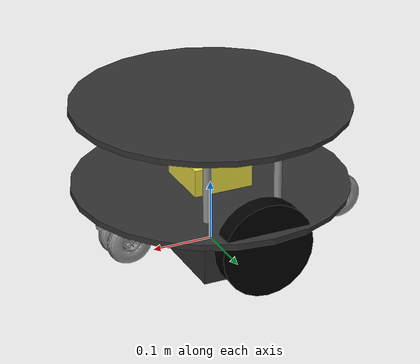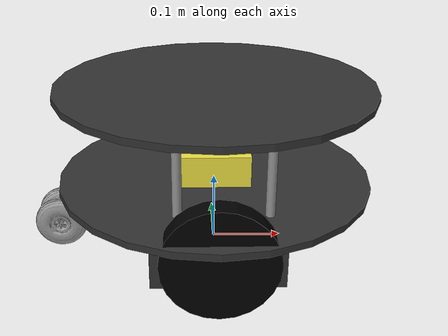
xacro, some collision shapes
<?xml version="1.0"?>
<robot name="arlobot" xmlns:xacro="http://ros.org/wiki/xacro">

  <!-- From $(find turtlebot_description)/urdf/common_properties.urdf.xacro -->
  <!-- It is required by asus_xtion_pro.urdf.xacro -->
  <xacro:property name="M_PI" value="3.1415926535897931"/>

  <!-- This is where the 3D camera location is set. -->
  <xacro:include filename="3d_camera_position.urdf.xacro"/>

  <!-- ArloBot -->
  <xacro:include filename="arlo.urdf.xacro"/>

  <!-- 3D Sensor -->
  <!-- TODO: Why is this still here? Can I safely remove it? -->
  <xacro:include filename="asus_xtion_pro.urdf.xacro"/>

  <xacro:arlobot/>
  <xacro:stack_circles parent="base_link"/>
  <xacro:sensor_asus_xtion_pro parent="base_link"/>
</robot>

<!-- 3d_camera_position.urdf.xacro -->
<!-- This file defines the 3D camera location.-->
<!-- See Readme.MD for hints on calibrating this -->
<robot xmlns:xacro="http://ros.org/wiki/xacro">
  <!-- This is how far forward or backward on the robot the camera is set. -->
  <!-- Test this by setting the robot's axles exactly 1 meter from a wall, start up RVIZ with the robot at 0,0,0 on the grid, -->
  <!-- and see if the wall lines up with the first 1 meter grid line from the robot. -->
  <xacro:property name="cam_px" value="0.125"/>

  <!-- NOTE: cam_py, that is the Y offset, varies for different configurations. This is set in sensors_urdf instead of here -->

  <!-- This is the height of the camera. It isn't as essential as most settings, because we are using a "2D" map. -->
  <!-- However, setting it accurately can help with some use cases. -->
  <xacro:property name="cam_pz" value="0.17"/>

  <!-- This is the tilt across the horizontal when looking straight at the camera. Probably important, but hard to see if it is. -->
  <xacro:property name="cam_or" value="0"/>

  <!-- This is the tilt causing the camera to look "up" or "down". -->
  <xacro:property name="cam_op" value="0"/>

  <!-- This is the rotation of the camera -->
  <!-- Test this by setting the robot's axles exactly 1 meter from a wall, start up RVIZ with the robot at 0,0,0 on the grid, -->
  <!-- and see if the wall lines up straight with the grid line. -->
  <xacro:property name="cam_oy" value="-0.005"/>
</robot>

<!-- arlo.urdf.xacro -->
<robot name="arlobot_hardware" xmlns:xacro="http://ros.org/wiki/xacro">

  <!-- Macro for ArloBot body. -->

  <xacro:property name="base_x" value="0.33"/>
  <xacro:property name="base_y" value="0.33"/>

  <xacro:macro name="arlobot">
    <material name="black">
      <color rgba="0.0 0.0 0.0 1.0"/>
    </material>
    <material name="Green">
      <color rgba="0.0 0.8 0.0 1.0"/>
    </material>
    <material name="veryDarkGrey">
      <color rgba=".2 .2 .2 1"/>
    </material>
    <material name="light_grey">
      <color rgba="0.6 0.6 0.6 1"/>
    </material>

    <!-- base_footprint is a fictitious link(frame) that is on the ground right below base_link origin, navigation stack depends on this frame -->
    <link name="base_footprint">
      <visual>
        <origin xyz="0 0 0" rpy="0 0 0"/>
        <geometry>
          <box size="0.001 0.001 0.001"/>
        </geometry>
        <material name="Green"/>
      </visual>

      <collision>
        <origin xyz="0 0 0.017" rpy="0 0 0"/>
        <geometry>
          <box size="0.001 0.001 0.001"/>
        </geometry>
      </collision>
    </link>

    <link name="base_link">
      <inertial>
        <mass value="2"/>
        <origin xyz="0 0 0.0"/>
        <inertia ixx="0.01" ixy="0.0" ixz="0.0"
                 iyy="0.01" iyz="0.0" izz="0.5"/>
      </inertial>

      <visual>
        <origin xyz="0 0 0" rpy="0 0 0"/>
        <geometry>
          <cylinder length="0.0095" radius="0.2245"/>
        </geometry>
        <material name="veryDarkGrey"/>
      </visual>

      <collision>
        <origin xyz="0 0 0" rpy="0 0 0"/>
        <geometry>
          <cylinder length="0.0095" radius="0.2245"/>
        </geometry>
      </collision>
    </link>

    <link name="battery_box">
      <inertial>
        <mass value="0.001"/>
        <origin xyz="0 0 0"/>
        <inertia ixx="0.0001" ixy="0.0" ixz="0.0"
                 iyy="0.0001" iyz="0.0"
                 izz="0.0001"/>
      </inertial>

      <visual>
        <origin xyz="0 0 0" rpy="0 0 0"/>
        <geometry>
          <box size="0.1778 0.3366 0.0762"/>
        </geometry>
        <material name="veryDarkGrey"/>
      </visual>

      <collision>
        <origin xyz="0 0 0" rpy="0 0 0"/>
        <geometry>
          <box size="0.1778 0.3366 0.0762"/>
        </geometry>
      </collision>
    </link>

    <joint name="battery_box_joint" type="fixed">
      <origin xyz="0 0 -0.04285" rpy="0 0 0"/>
      <parent link="base_link"/>
      <child link="battery_box"/>
    </joint>

    <link name="front_caster">
      <inertial>
        <mass value="0.001"/>
        <origin xyz="0 0 0"/>
        <inertia ixx="0.0001" ixy="0.0" ixz="0.0"
                 iyy="0.0001" iyz="0.0"
                 izz="0.0001"/>
      </inertial>

      <visual>
        <origin xyz="0 0 0" rpy="-1.5707 0 1.5707"/>
        <geometry>
          <mesh filename="package://arlobot_ros/meshes/28971-Caster-Wheel-Kit-v1.0_simplified.stl"/>
        </geometry>
        <material name="light_grey">
          <color rgba="0.6 0.6 0.6 1"/>
        </material>
      </visual>

    </link>

    <joint name="front_caster_joint" type="fixed">
      <origin xyz="0.18745 0 -0.00475" rpy="0 0 0"/>
      <parent link="base_link"/>
      <child link="front_caster"/>
    </joint>

    <link name="rear_caster">
      <inertial>
        <mass value="0.001"/>
        <origin xyz="0 0 0"/>
        <inertia ixx="0.0001" ixy="0.0" ixz="0.0"
                 iyy="0.0001" iyz="0.0"
                 izz="0.0001"/>
      </inertial>

      <visual>
        <origin xyz="0 0 0" rpy="-1.5707 0 1.5707"/>
        <geometry>
          <mesh filename="package://arlobot_ros/meshes/28971-Caster-Wheel-Kit-v1.0_simplified.stl"/>
        </geometry>
        <material name="light_grey">
          <color rgba="0.6 0.6 0.6 1"/>
        </material>
      </visual>

    </link>

    <joint name="rear_caster_joint" type="fixed">
      <origin xyz="-0.18745 0 -0.00475" rpy="0 0 0"/>
      <parent link="base_link"/>
      <child link="rear_caster"/>
    </joint>

    <joint name="base_footprint_joint" type="fixed">
      <origin xyz="0 0 0.10125" rpy="0 0 0"/>
      <parent link="base_footprint"/>
      <child link="base_link"/>
    </joint>

    <link name="left_axle_link">
      <inertial>
        <origin xyz="0 0 0"/>
        <mass value="0.01"/>
        <inertia ixx="0.001" ixy="0.0" ixz="0.0"
                 iyy="0.001" iyz="0.0" izz="0.001"/>
      </inertial>

      <visual>
        <origin xyz="0 0 0" rpy="0 1.5707 1.5707"/>
        <geometry>
          <cylinder radius="0.00635" length="0.00635"/>
        </geometry>
        <material name="light_grey"/>
      </visual>

      <collision>
        <origin xyz="0 0 0" rpy="0 1.5707 1.5707"/>
        <geometry>
          <cylinder radius="0.00635" length="0.00635"/>
        </geometry>
      </collision>
    </link>

    <joint name="left_axle_joint" type="fixed">
      <origin xyz="0 0.171475 0.0178" rpy="0 0 0"/>
      <parent link="battery_box"/>
      <child link="left_axle_link"/>
      <axis xyz="0 1 0"/>
    </joint>

    <link name="right_axle_link">
      <inertial>
        <origin xyz="0 0 0"/>
        <mass value="0.01"/>
        <inertia ixx="0.001" ixy="0.0" ixz="0.0"
                 iyy="0.001" iyz="0.0" izz="0.001"/>
      </inertial>

      <visual>
        <origin xyz="0 0 0" rpy="0 1.5707 1.5707"/>
        <geometry>
          <cylinder radius="0.00635" length="0.00635"/>
        </geometry>
        <material name="light_grey"/>
      </visual>

      <collision>
        <origin xyz="0 0 0" rpy="0 1.5707 1.5707"/>
        <geometry>
          <cylinder radius="0.00635" length="0.00635"/>
        </geometry>
      </collision>
    </link>

    <joint name="right_axle_joint" type="fixed">
      <origin xyz="0 -0.171475 0.0178" rpy="0 0 0"/>
      <parent link="battery_box"/>
      <child link="right_axle_link"/>
      <axis xyz="0 1 0"/>
    </joint>

    <link name="left_wheel_link">
      <inertial>
        <origin xyz="0 0 0"/>
        <mass value="0.01"/>
        <inertia ixx="0.001" ixy="0.0" ixz="0.0"
                 iyy="0.001" iyz="0.0" izz="0.001"/>
      </inertial>

      <visual>
        <origin xyz="0 0 0" rpy="0 1.5707 1.5707"/>
        <geometry>
          <cylinder radius="0.0762" length="0.03175"/>
        </geometry>
        <material name="black"/>
      </visual>

      <collision>
        <origin xyz="0 0 0" rpy="0 1.5707 1.5707"/>
        <geometry>
          <cylinder radius="0.0762" length="0.03175"/>
        </geometry>
      </collision>
    </link>

    <!-- Fixed because we never rotate it anyway, it is just for show -->
    <!-- NOTE This may prevent gazebo from working with this model -->
    <joint name="left_wheel_joint" type="fixed">
      <origin xyz="0 0.01905 0" rpy="0 0 0"/>
      <parent link="left_axle_link"/>
      <child link="left_wheel_link"/>
      <axis xyz="0 1 0"/>
    </joint>

    <link name="right_wheel_link">
      <inertial>
        <origin xyz="0 0 0"/>
        <mass value="0.01"/>
        <inertia ixx="0.001" ixy="0.0" ixz="0.0"
                 iyy="0.001" iyz="0.0" izz="0.001"/>
      </inertial>

      <visual>
        <origin xyz="0 0 0" rpy="0 1.5707 1.5707"/>
        <geometry>
          <cylinder radius="0.0762" length="0.03175"/>
        </geometry>
        <material name="black"/>
      </visual>

      <collision>
        <origin xyz="0 0 0" rpy="0 1.5707 1.5707"/>
        <geometry>
          <cylinder radius="0.0762" length="0.03175"/>
        </geometry>
      </collision>
    </link>

    <!-- Fixed because we never rotate it anyway, it is just for show -->
    <!-- NOTE This may prevent gazebo from working with this model -->
    <joint name="right_wheel_joint" type="fixed">
      <origin xyz="0 -0.01905 0" rpy="0 0 0"/>
      <parent link="right_axle_link"/>
      <child link="right_wheel_link"/>
      <axis xyz="0 1 0"/>
    </joint>

    <!-- This pretends to be in the center in order to aid in calculating degrees from multiple sensors on one fake laser scan -->
    <joint name="ping_array_joint" type="fixed">
      <origin xyz="0 0 0.03695" rpy="0 0 0"/>
      <parent link="base_link"/>
      <child link="ping_sensor_array"/>
    </joint>

    <link name="ping_sensor_array">
      <visual>
        <geometry>
          <box size="0.0174 0.06 0.0644"/>
        </geometry>
      </visual>
      <inertial>
        <mass value="0.001"/>
        <origin xyz="0 0 0"/>
        <inertia ixx="0.0001" ixy="0.0" ixz="0.0"
                 iyy="0.0001" iyz="0.0"
                 izz="0.0001"/>
      </inertial>
    </link>

    <joint name="ir_array_joint" type="fixed">
      <origin xyz="0 0 0.03695" rpy="0 0 0"/>
      <parent link="base_link"/>
      <child link="ir_sensor_array"/>
    </joint>

    <link name="ir_sensor_array">
      <visual>
        <geometry>
          <box size="0.0174 0.06 0.0644"/>
        </geometry>
      </visual>
      <inertial>
        <mass value="0.001"/>
        <origin xyz="0 0 0"/>
        <inertia ixx="0.0001" ixy="0.0" ixz="0.0"
                 iyy="0.0001" iyz="0.0"
                 izz="0.0001"/>
      </inertial>
    </link>

    <!-- XV11 Neato Laser scanner. -->
    <!--    NOTE: This is no longer used on my robot, only on my stationary test rig. -->
    <joint name="neato_laser_joint" type="fixed">
      <origin xyz="0.0 0.0 0.0" rpy="0.0 0 0"/>
      <parent link="base_link"/>
      <child link="neato_laser"/>
    </joint>

    <link name="neato_laser">
      <visual>
        <geometry>
          <box size="0.1 0.1 0.1"/>
        </geometry>
      </visual>
      <inertial>
        <mass value="0.001"/>
        <origin xyz="0 0 0"/>
        <inertia ixx="0.0001" ixy="0.0" ixz="0.0"
                 iyy="0.0001" iyz="0.0"
                 izz="0.0001"/>
      </inertial>
    </link>

    <!-- Scanse Sweep rotary scanner. -->
    <!--    NOTE: This is no longer used on my robot, only on my stationary test rig. -->
    <joint name="scanse_sweep_joint" type="fixed">
      <origin xyz="0.0 0.0 0.0" rpy="0.0 0 0"/>
      <parent link="base_link"/>
      <child link="scanse_sweep"/>
    </joint>

    <link name="scanse_sweep">
      <visual>
        <geometry>
          <box size="0.1 0.1 0.1"/>
        </geometry>
      </visual>
      <inertial>
        <mass value="0.001"/>
        <origin xyz="0 0 0"/>
        <inertia ixx="0.0001" ixy="0.0" ixz="0.0"
                 iyy="0.0001" iyz="0.0"
                 izz="0.0001"/>
      </inertial>
    </link>
  </xacro:macro>

  <xacro:macro name="arlobot_standoff_5in" params="parent number x_loc y_loc z_loc">
    <joint name="standoff_5in_${number}_joint" type="fixed">
      <origin xyz="${x_loc} ${y_loc} ${z_loc}" rpy="0 0 0"/>
      <parent link="${parent}"/>
      <child link="standoff_5in_${number}_link"/>
    </joint>

    <link name="standoff_5in_${number}_link">
      <inertial>
        <mass value="0.001"/>
        <origin xyz="0 0 0"/>
        <inertia ixx="0.0001" ixy="0.0" ixz="0.0"
                 iyy="0.0001" iyz="0.0"
                 izz="0.0001"/>
      </inertial>

      <visual>
        <origin xyz=" 0 0 0 " rpy="0 0 0"/>
        <geometry>
          <cylinder length="0.127" radius="0.00635"/>
        </geometry>
        <material name="light_grey">
          <color rgba="0.6 0.6 0.6 1"/>
        </material>
      </visual>

      <collision>
        <origin xyz="0.0 0.0 0.0" rpy="0 0 0"/>
        <geometry>
          <cylinder length="0.127" radius="0.00635"/>
        </geometry>
      </collision>
    </link>
  </xacro:macro>

  <xacro:macro name="stack_circles" params="parent">
    <joint name="plate_0_joint" type="fixed">
      <origin xyz="0 0 0.1365" rpy="0 0 0"/>
      <parent link="${parent}"/>
      <child link="plate_0_link"/>
    </joint>

    <link name="plate_0_link">
      <inertial>
        <mass value="0.01"/>
        <origin xyz="0 0 0"/>
        <inertia ixx="0.01" ixy="0.0" ixz="0.0"
                 iyy="0.01" iyz="0.0"
                 izz="0.01"/>
      </inertial>

      <visual>
        <origin xyz=" 0 0 0 " rpy="0 0 0"/>
        <geometry>
          <cylinder length="0.0095" radius="0.2245"/>
        </geometry>
        <material name="veryDarkGrey">
          <color rgba=".2 .2 .2 1"/>
        </material>
      </visual>

      <collision>
        <origin xyz="0.0 0.0 0.0" rpy="0 0 0"/>
        <geometry>
          <cylinder length="0.0095" radius="0.2245"/>
        </geometry>
      </collision>
    </link>

    <xacro:arlobot_standoff_5in parent="${parent}" number="0" x_loc="0.0676402" y_loc="0.1314196"
                                z_loc="0.06825"/>
    <xacro:arlobot_standoff_5in parent="${parent}" number="1" x_loc="0.0676402" y_loc="-0.1314196"
                                z_loc="0.06825"/>
    <xacro:arlobot_standoff_5in parent="${parent}" number="2" x_loc="-0.052832" y_loc="-0.1314196"
                                z_loc="0.06825"/>
    <xacro:arlobot_standoff_5in parent="${parent}" number="3" x_loc="-0.052832" y_loc="0.1314196"
                                z_loc="0.06825"/>
  </xacro:macro>
</robot>

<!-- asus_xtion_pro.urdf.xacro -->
<robot name="sensor_asus_xtion_pro" xmlns:xacro="http://ros.org/wiki/xacro">
  <xacro:include filename="3d_camera_position.urdf.xacro"/>

  <!-- Xacro properties -->
  <xacro:property name="M_SCALE" value="0.001"/>
  <xacro:property name="asus_xtion_pro_cam_py" value="0.0205"/>
  <xacro:property name="asus_xtion_pro_depth_rel_rgb_py" value="0.0270"/>
  <!-- Camera left/right offset. Camera is actually off center in the unit, so -0.0220 makes it physically centered. -->
  <xacro:property name="asus_xtion_pro_cam_rel_rgb_py" value="-0.0220"/>

  <!-- Parameterised in part by the values in 3d_camera_position_chrisl8.urdf.xacro -->
  <xacro:macro name="sensor_asus_xtion_pro" params="parent">
    <joint name="camera_rgb_joint" type="fixed">
      <origin xyz="${cam_px} ${asus_xtion_pro_cam_py} ${cam_pz}"
              rpy="${cam_or} ${cam_op} ${cam_oy}"/>
      <parent link="${parent}"/>
      <child link="camera_rgb_frame"/>
    </joint>
    <link name="camera_rgb_frame"/>

    <joint name="camera_rgb_optical_joint" type="fixed">
      <origin xyz="0 0 0" rpy="${-M_PI/2} 0 ${-M_PI/2}"/>
      <parent link="camera_rgb_frame"/>
      <child link="camera_rgb_optical_frame"/>
    </joint>
    <link name="camera_rgb_optical_frame"/>

    <joint name="camera_joint" type="fixed">
      <origin xyz="0 ${asus_xtion_pro_cam_rel_rgb_py} 0"
              rpy="0 0 0"/>
      <parent link="camera_rgb_frame"/>
      <child link="camera_link"/>
    </joint>
    <link name="camera_link">
      <visual>
        <origin xyz="-0.015 0.0035 0.004" rpy="0 0 0"/>
        <geometry>
          <mesh filename="package://arlobot_ros/meshes/sensors/xtion_pro_camera.dae"
                scale="0.001 0.001 0.001"/>
        </geometry>
      </visual>
      <collision>
        <origin xyz="0.0 0.0 0.0" rpy="0 0 0"/>
        <geometry>
          <box size="0.0 0.0 0.0"/>
        </geometry>
      </collision>
      <inertial>
        <mass value="0.170"/>
        <origin xyz="0 0 0"/>
        <inertia ixx="0.001152600" ixy="0.0" ixz="0.0"
                 iyy="0.000148934" iyz="0.0"
                 izz="0.001154654"/>
      </inertial>
    </link>

    <joint name="camera_depth_joint" type="fixed">
      <origin xyz="0 ${asus_xtion_pro_depth_rel_rgb_py} 0" rpy="0 0 0"/>
      <parent link="camera_rgb_frame"/>
      <child link="camera_depth_frame"/>
    </joint>
    <link name="camera_depth_frame"/>

    <joint name="camera_depth_optical_joint" type="fixed">
      <origin xyz="0 0 0" rpy="${-M_PI/2} 0 ${-M_PI/2}"/>
      <parent link="camera_depth_frame"/>
      <child link="camera_depth_optical_frame"/>
    </joint>
    <link name="camera_depth_optical_frame"/>

  </xacro:macro>
</robot>
